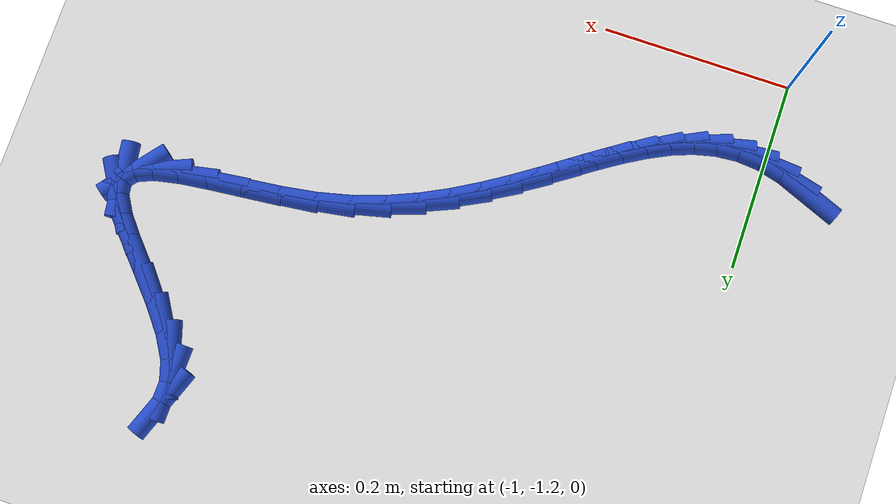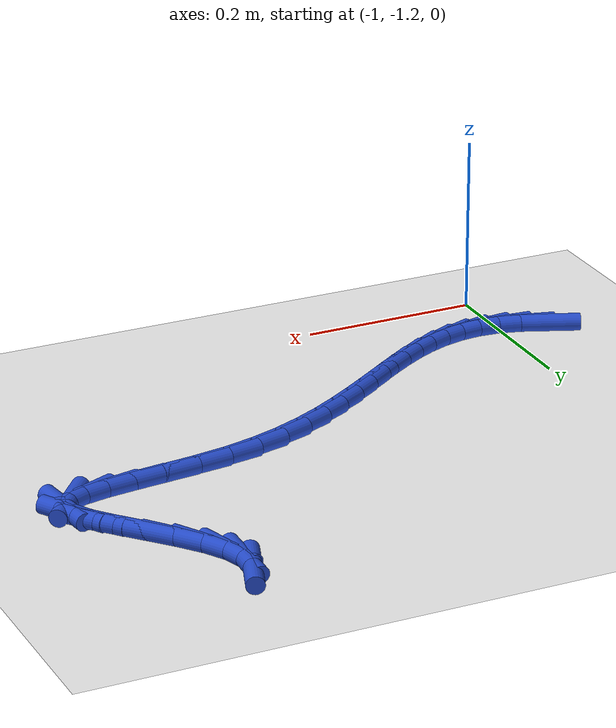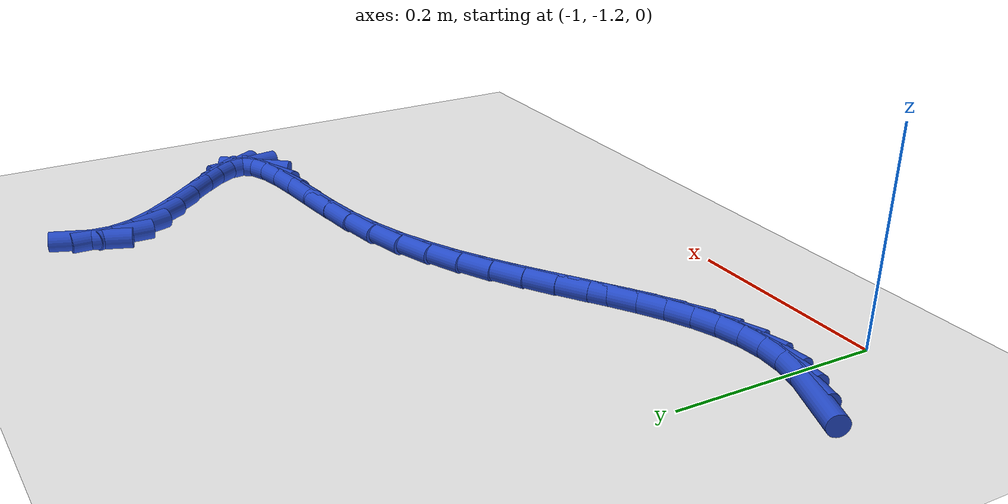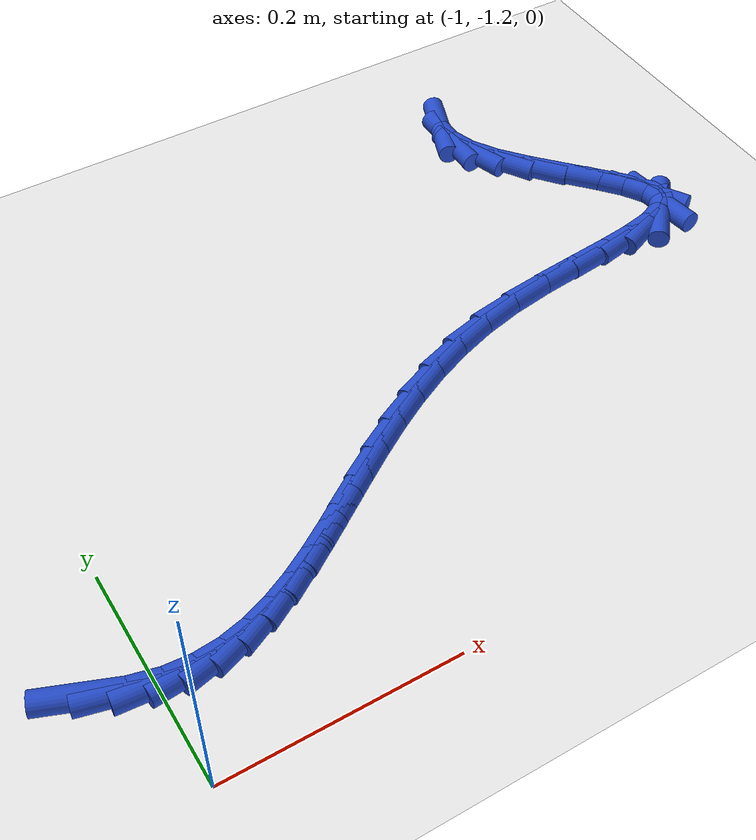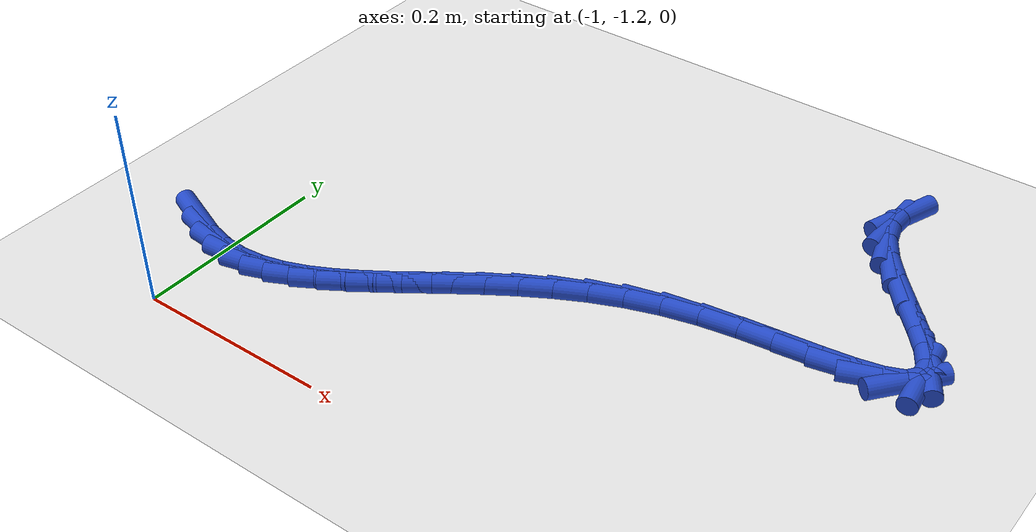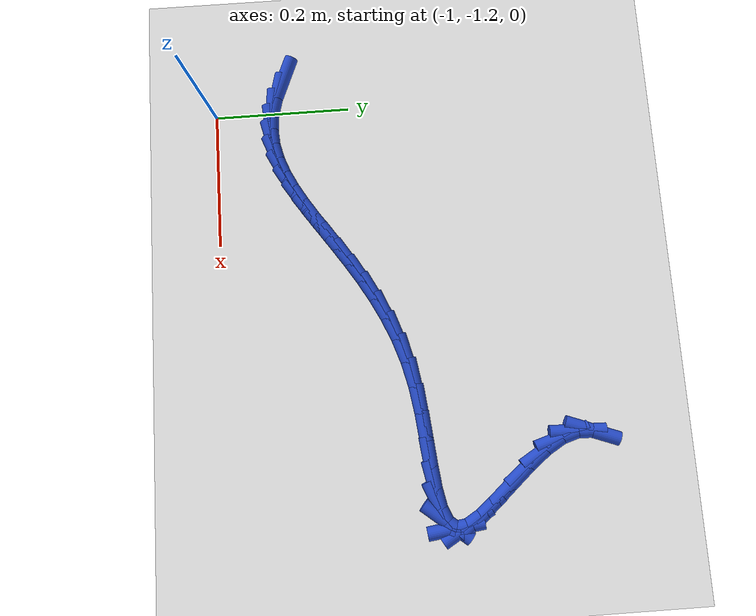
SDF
<sdf version="1.6">
 <world name="default">
  <model name="ground_plane">
   <static>1</static>
   <link name="link">
    <collision name="collision">
     <geometry><plane><normal>0 0 1</normal><size>100 100</size></plane></geometry>
     <surface><friction><ode><mu>100</mu><mu2>50</mu2></ode></friction></surface>
    </collision>
    <visual name="visual">
     <cast_shadows>0</cast_shadows>
     <geometry><plane><normal>0 0 1</normal><size>100 100</size></plane></geometry>
     <material>
      <script><uri>file://media/materials/scripts/gazebo.material</uri><name>Gazebo/WhiteGlow</name></script>
     </material>
    </visual>
   </link>
  </model>
  <model name="line">
   <link name="link_215">
    <pose>-1.0468485430936745 -1.0966768269462002 0.01 0 1.57 -0.3834587388910332</pose>
    <collision name="collision">
     <geometry><cylinder><radius>0.01</radius><length>0.08</length></cylinder></geometry>
    </collision>
    <visual name="visual">
     <material>
      <script><name>Gazebo/Blue</name><uri>file://media/materials/scripts/gazebo.material</uri></script>
     </material>
     <geometry><cylinder><radius>0.01</radius><length>0.08</length></cylinder></geometry>
    </visual>
   </link>
   <link name="link_216">
    <pose>-1.0204206748349118 -1.107338590093931 0.01 0 1.57 -0.24821388833579905</pose>
    <collision name="collision">
     <geometry><cylinder><radius>0.01</radius><length>0.08</length></cylinder></geometry>
    </collision>
    <visual name="visual">
     <material>
      <script><name>Gazebo/Blue</name><uri>file://media/materials/scripts/gazebo.material</uri></script>
     </material>
     <geometry><cylinder><radius>0.01</radius><length>0.08</length></cylinder></geometry>
    </visual>
   </link>
   <link name="link_217">
    <pose>-0.9950040496029166 -1.1137801852164029 0.01 0 1.57 -0.08006109990191204</pose>
    <collision name="collision">
     <geometry><cylinder><radius>0.01</radius><length>0.08</length></cylinder></geometry>
    </collision>
    <visual name="visual">
     <material>
      <script><name>Gazebo/Blue</name><uri>file://media/materials/scripts/gazebo.material</uri></script>
     </material>
     <geometry><cylinder><radius>0.01</radius><length>0.08</length></cylinder></geometry>
    </visual>
   </link>
   <link name="link_218">
    <pose>-0.9705822423450046 -1.115739610251406 0.01 0 1.57 0.08703776070108167</pose>
    <collision name="collision">
     <geometry><cylinder><radius>0.01</radius><length>0.08</length></cylinder></geometry>
    </collision>
    <visual name="visual">
     <material>
      <script><name>Gazebo/Blue</name><uri>file://media/materials/scripts/gazebo.material</uri></script>
     </material>
     <geometry><cylinder><radius>0.01</radius><length>0.08</length></cylinder></geometry>
    </visual>
   </link>
   <link name="link_219">
    <pose>-0.946940497118158 -1.1136766737471366 0.01 0 1.57 0.23849825403664693</pose>
    <collision name="collision">
     <geometry><cylinder><radius>0.01</radius><length>0.08</length></cylinder></geometry>
    </collision>
    <visual name="visual">
     <material>
      <script><name>Gazebo/Blue</name><uri>file://media/materials/scripts/gazebo.material</uri></script>
     </material>
     <geometry><cylinder><radius>0.01</radius><length>0.08</length></cylinder></geometry>
    </visual>
   </link>
   <link name="link_220">
    <pose>-0.923860190358506 -1.1080652601719019 0.01 0 1.57 0.3649043998852789</pose>
    <collision name="collision">
     <geometry><cylinder><radius>0.01</radius><length>0.08</length></cylinder></geometry>
    </collision>
    <visual name="visual">
     <material>
      <script><name>Gazebo/Blue</name><uri>file://media/materials/scripts/gazebo.material</uri></script>
     </material>
     <geometry><cylinder><radius>0.01</radius><length>0.08</length></cylinder></geometry>
    </visual>
   </link>
   <link name="link_221">
    <pose>-0.9011226985021789 -1.099379253994011 0.01 0 1.57 0.4629420781796749</pose>
    <collision name="collision">
     <geometry><cylinder><radius>0.01</radius><length>0.08</length></cylinder></geometry>
    </collision>
    <visual name="visual">
     <material>
      <script><name>Gazebo/Blue</name><uri>file://media/materials/scripts/gazebo.material</uri></script>
     </material>
     <geometry><cylinder><radius>0.01</radius><length>0.08</length></cylinder></geometry>
    </visual>
   </link>
   <link name="link_222">
    <pose>-0.8785093979853064 -1.088092539681773 0.01 0 1.57 0.5335558202378631</pose>
    <collision name="collision">
     <geometry><cylinder><radius>0.01</radius><length>0.08</length></cylinder></geometry>
    </collision>
    <visual name="visual">
     <material>
      <script><name>Gazebo/Blue</name><uri>file://media/materials/scripts/gazebo.material</uri></script>
     </material>
     <geometry><cylinder><radius>0.01</radius><length>0.08</length></cylinder></geometry>
    </visual>
   </link>
   <link name="link_223">
    <pose>-0.855801665244018 -1.0746790017034962 0.01 0 1.57 0.5795130367049015</pose>
    <collision name="collision">
     <geometry><cylinder><radius>0.01</radius><length>0.08</length></cylinder></geometry>
    </collision>
    <visual name="visual">
     <material>
      <script><name>Gazebo/Blue</name><uri>file://media/materials/scripts/gazebo.material</uri></script>
     </material>
     <geometry><cylinder><radius>0.01</radius><length>0.08</length></cylinder></geometry>
    </visual>
   </link>
   <link name="link_224">
    <pose>-0.832780876714444 -1.0596125245274892 0.01 0 1.57 0.603819841733459</pose>
    <collision name="collision">
     <geometry><cylinder><radius>0.01</radius><length>0.08</length></cylinder></geometry>
    </collision>
    <visual name="visual">
     <material>
      <script><name>Gazebo/Blue</name><uri>file://media/materials/scripts/gazebo.material</uri></script>
     </material>
     <geometry><cylinder><radius>0.01</radius><length>0.08</length></cylinder></geometry>
    </visual>
   </link>
   <link name="link_225">
    <pose>-0.8092284088327139 -1.0433669926220603 0.01 0 1.57 0.609032840930864</pose>
    <collision name="collision">
     <geometry><cylinder><radius>0.01</radius><length>0.08</length></cylinder></geometry>
    </collision>
    <visual name="visual">
     <material>
      <script><name>Gazebo/Blue</name><uri>file://media/materials/scripts/gazebo.material</uri></script>
     </material>
     <geometry><cylinder><radius>0.01</radius><length>0.08</length></cylinder></geometry>
    </visual>
   </link>
   <link name="link_226">
    <pose>-0.7849256380349567 -1.026416290455518 0.01 0 1.57 0.5971018060878883</pose>
    <collision name="collision">
     <geometry><cylinder><radius>0.01</radius><length>0.08</length></cylinder></geometry>
    </collision>
    <visual name="visual">
     <material>
      <script><name>Gazebo/Blue</name><uri>file://media/materials/scripts/gazebo.material</uri></script>
     </material>
     <geometry><cylinder><radius>0.01</radius><length>0.08</length></cylinder></geometry>
    </visual>
   </link>
   <link name="link_227">
    <pose>-0.759653940757304 -1.0092343024961716 0.01 0 1.57 0.5694598648578563</pose>
    <collision name="collision">
     <geometry><cylinder><radius>0.01</radius><length>0.08</length></cylinder></geometry>
    </collision>
    <visual name="visual">
     <material>
      <script><name>Gazebo/Blue</name><uri>file://media/materials/scripts/gazebo.material</uri></script>
     </material>
     <geometry><cylinder><radius>0.01</radius><length>0.08</length></cylinder></geometry>
    </visual>
   </link>
   <link name="link_228">
    <pose>-0.7331946934358845 -0.9922949132123294 0.01 0 1.57 0.5272192711331557</pose>
    <collision name="collision">
     <geometry><cylinder><radius>0.01</radius><length>0.08</length></cylinder></geometry>
    </collision>
    <visual name="visual">
     <material>
      <script><name>Gazebo/Blue</name><uri>file://media/materials/scripts/gazebo.material</uri></script>
     </material>
     <geometry><cylinder><radius>0.01</radius><length>0.08</length></cylinder></geometry>
    </visual>
   </link>
   <link name="link_229">
    <pose>-0.7053292725068284 -0.9760720070722999 0.01 0 1.57 0.47141445526075315</pose>
    <collision name="collision">
     <geometry><cylinder><radius>0.01</radius><length>0.08</length></cylinder></geometry>
    </collision>
    <visual name="visual">
     <material>
      <script><name>Gazebo/Blue</name><uri>file://media/materials/scripts/gazebo.material</uri></script>
     </material>
     <geometry><cylinder><radius>0.01</radius><length>0.08</length></cylinder></geometry>
    </visual>
   </link>
   <link name="link_230">
    <pose>-0.6758390544062653 -0.9610394685443918 0.01 0 1.57 0.40326169662655076</pose>
    <collision name="collision">
     <geometry><cylinder><radius>0.01</radius><length>0.08</length></cylinder></geometry>
    </collision>
    <visual name="visual">
     <material>
      <script><name>Gazebo/Blue</name><uri>file://media/materials/scripts/gazebo.material</uri></script>
     </material>
     <geometry><cylinder><radius>0.01</radius><length>0.08</length></cylinder></geometry>
    </visual>
   </link>
   <link name="link_231">
    <pose>-0.6445054155703249 -0.9476711820969133 0.01 0 1.57 0.32439615916107206</pose>
    <collision name="collision">
     <geometry><cylinder><radius>0.01</radius><length>0.08</length></cylinder></geometry>
    </collision>
    <visual name="visual">
     <material>
      <script><name>Gazebo/Blue</name><uri>file://media/materials/scripts/gazebo.material</uri></script>
     </material>
     <geometry><cylinder><radius>0.01</radius><length>0.08</length></cylinder></geometry>
    </visual>
   </link>
   <link name="link_232">
    <pose>-0.6111097324351374 -0.9364410321981735 0.01 0 1.57 0.23710163279711635</pose>
    <collision name="collision">
     <geometry><cylinder><radius>0.01</radius><length>0.08</length></cylinder></geometry>
    </collision>
    <visual name="visual">
     <material>
      <script><name>Gazebo/Blue</name><uri>file://media/materials/scripts/gazebo.material</uri></script>
     </material>
     <geometry><cylinder><radius>0.01</radius><length>0.08</length></cylinder></geometry>
    </visual>
   </link>
   <link name="link_233">
    <pose>-0.5754365057282691 -0.9278207064151237 0.01 0 1.57 0.1577755679806159</pose>
    <collision name="collision">
     <geometry><cylinder><radius>0.01</radius><length>0.08</length></cylinder></geometry>
    </collision>
    <visual name="visual">
     <material>
      <script><name>Gazebo/Blue</name><uri>file://media/materials/scripts/gazebo.material</uri></script>
     </material>
     <geometry><cylinder><radius>0.01</radius><length>0.08</length></cylinder></geometry>
    </visual>
   </link>
   <link name="link_234">
    <pose>-0.5378887922169022 -0.9218469435815869 0.01 0 1.57 0.11227644013374358</pose>
    <collision name="collision">
     <geometry><cylinder><radius>0.01</radius><length>0.08</length></cylinder></geometry>
    </collision>
    <visual name="visual">
     <material>
      <script><name>Gazebo/Blue</name><uri>file://media/materials/scripts/gazebo.material</uri></script>
     </material>
     <geometry><cylinder><radius>0.01</radius><length>0.08</length></cylinder></geometry>
    </visual>
   </link>
   <link name="link_235">
    <pose>-0.5002288180832822 -0.9176007582682159 0.01 0 1.57 0.09916376471183866</pose>
    <collision name="collision">
     <geometry><cylinder><radius>0.01</radius><length>0.08</length></cylinder></geometry>
    </collision>
    <visual name="visual">
     <material>
      <script><name>Gazebo/Blue</name><uri>file://media/materials/scripts/gazebo.material</uri></script>
     </material>
     <geometry><cylinder><radius>0.01</radius><length>0.08</length></cylinder></geometry>
    </visual>
   </link>
   <link name="link_236">
    <pose>-0.4643995162916752 -0.9140360978425724 0.01 0 1.57 0.12196540064716622</pose>
    <collision name="collision">
     <geometry><cylinder><radius>0.01</radius><length>0.08</length></cylinder></geometry>
    </collision>
    <visual name="visual">
     <material>
      <script><name>Gazebo/Blue</name><uri>file://media/materials/scripts/gazebo.material</uri></script>
     </material>
     <geometry><cylinder><radius>0.01</radius><length>0.08</length></cylinder></geometry>
    </visual>
   </link>
   <link name="link_237">
    <pose>-0.43234381980634834 -0.9101069096722193 0.01 0 1.57 0.20002030701569382</pose>
    <collision name="collision">
     <geometry><cylinder><radius>0.01</radius><length>0.08</length></cylinder></geometry>
    </collision>
    <visual name="visual">
     <material>
      <script><name>Gazebo/Blue</name><uri>file://media/materials/scripts/gazebo.material</uri></script>
     </material>
     <geometry><cylinder><radius>0.01</radius><length>0.08</length></cylinder></geometry>
    </visual>
   </link>
   <link name="link_238">
    <pose>-0.4060046615915687 -0.9047671411247187 0.01 0 1.57 0.39539302293942585</pose>
    <collision name="collision">
     <geometry><cylinder><radius>0.01</radius><length>0.08</length></cylinder></geometry>
    </collision>
    <visual name="visual">
     <material>
      <script><name>Gazebo/Blue</name><uri>file://media/materials/scripts/gazebo.material</uri></script>
     </material>
     <geometry><cylinder><radius>0.01</radius><length>0.08</length></cylinder></geometry>
    </visual>
   </link>
   <link name="link_239">
    <pose>-0.38732497461160315 -0.8969707395676321 0.01 0 1.57 0.8940073728392799</pose>
    <collision name="collision">
     <geometry><cylinder><radius>0.01</radius><length>0.08</length></cylinder></geometry>
    </collision>
    <visual name="visual">
     <material>
      <script><name>Gazebo/Blue</name><uri>file://media/materials/scripts/gazebo.material</uri></script>
     </material>
     <geometry><cylinder><radius>0.01</radius><length>0.08</length></cylinder></geometry>
    </visual>
   </link>
   <link name="link_240">
    <pose>-0.37824769183071894 -0.8856716523685224 0.01 0 1.57 -1.4375980121607652</pose>
    <collision name="collision">
     <geometry><cylinder><radius>0.01</radius><length>0.08</length></cylinder></geometry>
    </collision>
    <visual name="visual">
     <material>
      <script><name>Gazebo/Blue</name><uri>file://media/materials/scripts/gazebo.material</uri></script>
     </material>
     <geometry><cylinder><radius>0.01</radius><length>0.08</length></cylinder></geometry>
    </visual>
   </link>
   <link name="link_241">
    <pose>-0.38035076331061607 -0.8699761134895165 0.01 0 1.57 -1.0317065285518292</pose>
    <collision name="collision">
     <geometry><cylinder><radius>0.01</radius><length>0.08</length></cylinder></geometry>
    </collision>
    <visual name="visual">
     <material>
      <script><name>Gazebo/Blue</name><uri>file://media/materials/scripts/gazebo.material</uri></script>
     </material>
     <geometry><cylinder><radius>0.01</radius><length>0.08</length></cylinder></geometry>
    </visual>
   </link>
   <link name="link_242">
    <pose>-0.3921366896429757 -0.8502735669369758 0.01 0 1.57 -0.8883548776522519</pose>
    <collision name="collision">
     <geometry><cylinder><radius>0.01</radius><length>0.08</length></cylinder></geometry>
    </collision>
    <visual name="visual">
     <material>
      <script><name>Gazebo/Blue</name><uri>file://media/materials/scripts/gazebo.material</uri></script>
     </material>
     <geometry><cylinder><radius>0.01</radius><length>0.08</length></cylinder></geometry>
    </visual>
   </link>
   <link name="link_243">
    <pose>-0.4105663598244908 -0.8275966835048499 0.01 0 1.57 -0.8408978619054016</pose>
    <collision name="collision">
     <geometry><cylinder><radius>0.01</radius><length>0.08</length></cylinder></geometry>
    </collision>
    <visual name="visual">
     <material>
      <script><name>Gazebo/Blue</name><uri>file://media/materials/scripts/gazebo.material</uri></script>
     </material>
     <geometry><cylinder><radius>0.01</radius><length>0.08</length></cylinder></geometry>
    </visual>
   </link>
   <link name="link_244">
    <pose>-0.43258912157094653 -0.8029829495068138 0.01 0 1.57 -0.8466360067081689</pose>
    <collision name="collision">
     <geometry><cylinder><radius>0.01</radius><length>0.08</length></cylinder></geometry>
    </collision>
    <visual name="visual">
     <material>
      <script><name>Gazebo/Blue</name><uri>file://media/materials/scripts/gazebo.material</uri></script>
     </material>
     <geometry><cylinder><radius>0.01</radius><length>0.08</length></cylinder></geometry>
    </visual>
   </link>
   <link name="link_245">
    <pose>-0.45515432259813 -0.777469851256542 0.01 0 1.57 -0.9019217973161685</pose>
    <collision name="collision">
     <geometry><cylinder><radius>0.01</radius><length>0.08</length></cylinder></geometry>
    </collision>
    <visual name="visual">
     <material>
      <script><name>Gazebo/Blue</name><uri>file://media/materials/scripts/gazebo.material</uri></script>
     </material>
     <geometry><cylinder><radius>0.01</radius><length>0.08</length></cylinder></geometry>
    </visual>
   </link>
   <link name="link_246">
    <pose>-0.47521131062182753 -0.7520948750677079 0.01 0 1.57 -1.0309750461754201</pose>
    <collision name="collision">
     <geometry><cylinder><radius>0.01</radius><length>0.08</length></cylinder></geometry>
    </collision>
    <visual name="visual">
     <material>
      <script><name>Gazebo/Blue</name><uri>file://media/materials/scripts/gazebo.material</uri></script>
     </material>
     <geometry><cylinder><radius>0.01</radius><length>0.08</length></cylinder></geometry>
    </visual>
   </link>
   <link name="link_247">
    <pose>-0.48971170727105273 -0.7278947445701568 0.01 0 1.57 -1.272836650115805</pose>
    <collision name="collision">
     <geometry><cylinder><radius>0.01</radius><length>0.08</length></cylinder></geometry>
    </collision>
    <visual name="visual">
     <material>
      <script><name>Gazebo/Blue</name><uri>file://media/materials/scripts/gazebo.material</uri></script>
     </material>
     <geometry><cylinder><radius>0.01</radius><length>0.08</length></cylinder></geometry>
    </visual>
   </link>
   <link name="link_248">
    <pose>-0.4965628867010883 -0.7055856183925329 0.01 0 1.57 1.54846947340267</pose>
    <collision name="collision">
     <geometry><cylinder><radius>0.01</radius><length>0.08</length></cylinder></geometry>
    </collision>
    <visual name="visual">
     <material>
      <script><name>Gazebo/Blue</name><uri>file://media/materials/scripts/gazebo.material</uri></script>
     </material>
     <geometry><cylinder><radius>0.01</radius><length>0.08</length></cylinder></geometry>
    </visual>
   </link>
   <link name="link_249">
    <pose>-0.49610471188988947 -0.6850677841498758 0.01 0 1.57 1.2148706915277463</pose>
    <collision name="collision">
     <geometry><cylinder><radius>0.01</radius><length>0.08</length></cylinder></geometry>
    </collision>
    <visual name="visual">
     <material>
      <script><name>Gazebo/Blue</name><uri>file://media/materials/scripts/gazebo.material</uri></script>
     </material>
     <geometry><cylinder><radius>0.01</radius><length>0.08</length></cylinder></geometry>
    </visual>
   </link>
  </model>
 </world>
</sdf>
